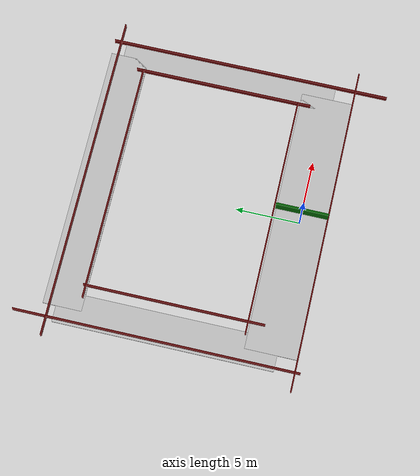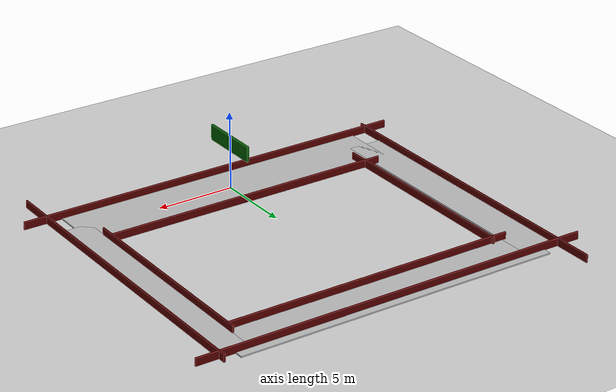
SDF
<?xml version="1.0" ?>

<sdf version="1.8">
  <world name="default">

  <!-- ================= TRACK ================= -->
<!-- ================= TRACK (EXTENDED SEGMENTS) ================= -->
<model name="track">
  <static>true</static>

  <!-- SEGMENT 1 -->
  <link name="seg1">
    <pose>0 0 0 0 0 0</pose>
    <collision name="collision">
      <geometry><box><size>21 4 0.1</size></box></geometry>
    </collision>
    <visual name="visual">
      <geometry><box><size>21 4 0.1</size></box></geometry>
    </visual>
  </link>

  <!-- SEGMENT 2 -->
  <link name="seg2">
    <pose>10.5 8 0 0 0 1.57</pose>
    <collision name="collision">
      <geometry><box><size>17 2 0.1</size></box></geometry>
    </collision>
    <visual name="visual">
      <geometry><box><size>17 2 0.1</size></box></geometry>
    </visual>
  </link>

  <!-- SEGMENT 3 -->
  <link name="seg3">
    <pose>0 16 0 0 0 3.14</pose>
    <collision name="collision">
      <geometry><box><size>21 3 0.1</size></box></geometry>
    </collision>
    <visual name="visual">
      <geometry><box><size>21 3 0.1</size></box></geometry>
    </visual>
  </link>

  <!-- SEGMENT 4 -->
  <link name="seg4">
    <pose>-10.5 8 0 0 0 -1.57</pose>
    <collision name="collision">
      <geometry><box><size>17 2.5 0.1</size></box></geometry>
    </collision>
    <visual name="visual">
      <geometry><box><size>17 2.5 0.1</size></box></geometry>
    </visual>
  </link>
</model>

<!-- ================= END TRACK ================= -->

<!-- ================= INNER FENCES (SHORTER) ================= -->
<!-- ================= INNER FENCES (SHORTER, VALID SDF) ================= -->
<model name="fences_inner">
  <static>true</static>

  <!-- SEGMENT 1 -->
  <link name="inner_s1">
    <pose>0 2.15 0.25 0 0 0</pose>
    <collision name="collision">
      <geometry><box><size>19 0.1 0.5</size></box></geometry>
    </collision>
    <visual name="visual">
      <geometry><box><size>19 0.1 0.5</size></box></geometry>
      <material>
        <ambient>0.25 0 0 1</ambient>
        <diffuse>0.35 0 0 1</diffuse>
        <specular>0.05 0.05 0.05 1</specular>
      </material>
    </visual>
  </link>

  <!-- SEGMENT 2 -->
  <link name="inner_s2">
    <pose>9.5 8.15 0.25 0 0 1.57</pose>
    <collision name="collision">
      <geometry><box><size>14 0.1 0.5</size></box></geometry>
    </collision>
    <visual name="visual">
      <geometry><box><size>14 0.1 0.5</size></box></geometry>
      <material>
        <ambient>0.25 0 0 1</ambient>
        <diffuse>0.35 0 0 1</diffuse>
        <specular>0.05 0.05 0.05 1</specular>
      </material>
    </visual>
  </link>

  <!-- SEGMENT 3 -->
  <link name="inner_s3">
    <pose>0 14.65 0.25 0 0 3.14</pose>
    <collision name="collision">
      <geometry><box><size>19 0.1 0.5</size></box></geometry>
    </collision>
    <visual name="visual">
      <geometry><box><size>19 0.1 0.5</size></box></geometry>
      <material>
        <ambient>0.25 0 0 1</ambient>
        <diffuse>0.35 0 0 1</diffuse>
        <specular>0.05 0.05 0.05 1</specular>
      </material>
    </visual>
  </link>

  <!-- SEGMENT 4 -->
  <link name="inner_s4">
    <pose>-8.5 7.85 0.25 0 0 -1.57</pose>
    <collision name="collision">
      <geometry><box><size>14 0.1 0.5</size></box></geometry>
    </collision>
    <visual name="visual">
      <geometry><box><size>14 0.1 0.5</size></box></geometry>
      <material>
        <ambient>0.25 0 0 1</ambient>
        <diffuse>0.35 0 0 1</diffuse>
        <specular>0.05 0.05 0.05 1</specular>
      </material>
    </visual>
  </link>

</model>

<!-- ================= END INNER FENCES ================= -->
<!-- ================= OUTER FENCES (LONGER & WIDER) ================= -->

<!-- ================= OUTER FENCES (LONGER & WIDER, VALID SDF) ================= -->
<model name="fences_outer">
  <static>true</static>

  <!-- SEGMENT 1 -->
  <link name="outer_s1">
    <pose>0 -2.05 0.25 0 0 0</pose>
    <collision name="collision">
      <geometry><box><size>26 0.1 0.5</size></box></geometry>
    </collision>
    <visual name="visual">
      <geometry><box><size>26 0.1 0.5</size></box></geometry>
      <material>
        <ambient>0.25 0 0 1</ambient>
        <diffuse>0.35 0 0 1</diffuse>
        <specular>0.05 0.05 0.05 1</specular>
      </material>
    </visual>
  </link>

  <!-- SEGMENT 2 -->
  <link name="outer_s2">
    <pose>11.5 6.45 0.25 0 0 1.57</pose>
    <collision name="collision">
      <geometry><box><size>22 0.1 0.5</size></box></geometry>
    </collision>
    <visual name="visual">
      <geometry><box><size>22 0.1 0.5</size></box></geometry>
      <material>
        <ambient>0.25 0 0 1</ambient>
        <diffuse>0.35 0 0 1</diffuse>
        <specular>0.05 0.05 0.05 1</specular>
      </material>
    </visual>
  </link>

  <!-- SEGMENT 3 -->
  <link name="outer_s3">
    <pose>0 16.95 0.25 0 0 3.14</pose>
    <collision name="collision">
      <geometry><box><size>26 0.1 0.5</size></box></geometry>
    </collision>
    <visual name="visual">
      <geometry><box><size>26 0.1 0.5</size></box></geometry>
      <material>
        <ambient>0.25 0 0 1</ambient>
        <diffuse>0.35 0 0 1</diffuse>
        <specular>0.05 0.05 0.05 1</specular>
      </material>
    </visual>
  </link>

  <!-- SEGMENT 4 -->
  <link name="outer_s4">
    <pose>-11.5 8.55 0.25 0 0 -1.57</pose>
    <collision name="collision">
      <geometry><box><size>22 0.1 0.5</size></box></geometry>
    </collision>
    <visual name="visual">
      <geometry><box><size>22 0.1 0.5</size></box></geometry>
      <material>
        <ambient>0.25 0 0 1</ambient>
        <diffuse>0.35 0 0 1</diffuse>
        <specular>0.05 0.05 0.05 1</specular>
      </material>
    </visual>
  </link>

</model>

<!-- ================= END FENCES ================= -->

<!-- ================= START/FINISH BOARD  ================= -->
<model name="start_finish_board">
  <static>true</static>

  <link name="board">
    <!-- yaw = 1.5708 rad => 90° around Z -->
    <pose>0 0 3 0 0 1.5708</pose>

    <!-- board body -->
    <collision name="collision">
      <geometry><box><size>4 0.15 1</size></box></geometry>
    </collision>

    <visual name="board_visual">
      <geometry><box><size>4 0.15 1</size></box></geometry>
      <material>
        <ambient>0 0.25 0 1</ambient>
        <diffuse>0 0.35 0 1</diffuse>
        <specular>0.05 0.05 0.05 1</specular>
      </material>
    </visual>

  </link>
</model>
<!-- ================= END START/FINISH BOARD ================= -->

    <plugin
      filename="gz-sim-physics-system"
      name="gz::sim::systems::Physics">
    </plugin>

    <plugin
      filename="gz-sim-scene-broadcaster-system"
      name="gz::sim::systems::SceneBroadcaster">
    </plugin>

    <plugin
      filename="gz-sim-user-commands-system"
      name="gz::sim::systems::UserCommands">
    </plugin>

    <plugin
      filename="gz-sim-sensors-system"
      name="gz::sim::systems::Sensors">
      <render_engine>ogre2</render_engine>
    </plugin>

    <light name="sun" type="directional">
      <cast_shadows>true</cast_shadows>
      <pose>0 0 10 0 0 0</pose>
      <diffuse>0.8 0.8 0.8 1</diffuse>
      <specular>0.2 0.2 0.2 1</specular>
      <attenuation>
        <range>1000</range>
        <constant>0.9</constant>
        <linear>0.01</linear>
        <quadratic>0.001</quadratic>
      </attenuation>
      <direction>-0.5 0.1 -0.9</direction>
    </light>

    <model name="ground_plane">
      <static>true</static>
      <link name="link">
        <collision name="collision">
          <geometry>
            <plane>
              <normal>0 0 1</normal>
              <size>100 100</size>
            </plane>
          </geometry>
        </collision>
        <visual name="visual">
          <geometry>
            <plane>
              <normal>0 0 1</normal>
              <size>100 100</size>
            </plane>
          </geometry>
          <material>
            <ambient>0.8 0.8 0.8 1</ambient>
            <diffuse>0.8 0.8 0.8 1</diffuse>
            <specular>0.8 0.8 0.8 1</specular>
          </material>
        </visual>
      </link>
    </model>

  </world>
</sdf>
